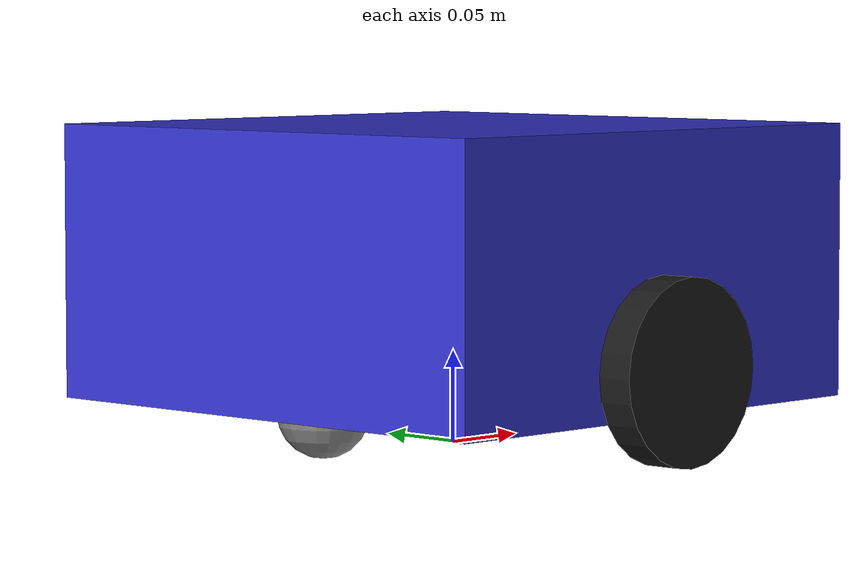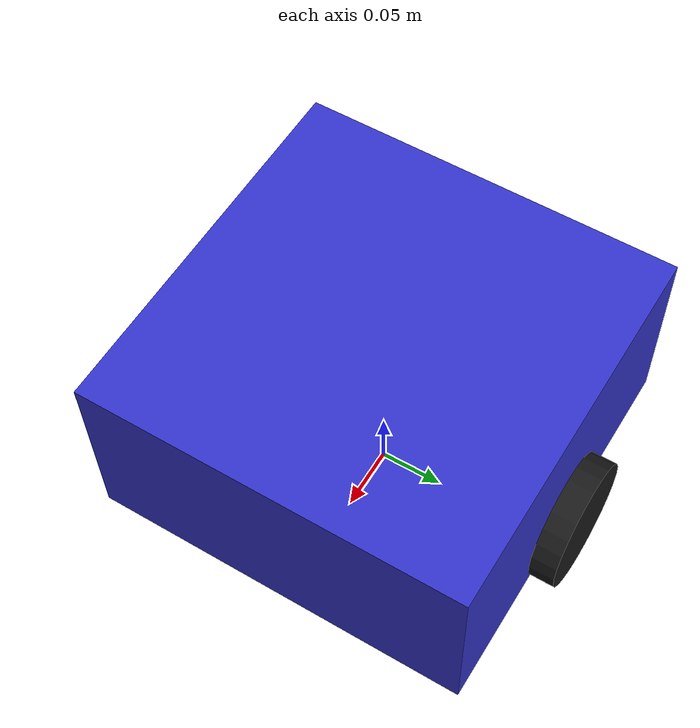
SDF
<?xml version="1.0"?>
<sdf version="1.9">
  <model name="sim_robot">
    <self_collide>false</self_collide>

    <!-- Chassis -->
    <link name="base_link">
      <pose>0 0 0.1 0 0 0</pose>
      <inertial>
        <mass>5.0</mass>
        <inertia>
          <ixx>0.028</ixx>
          <ixy>0</ixy>
          <ixz>0</ixz>
          <iyy>0.028</iyy>
          <iyz>0</iyz>
          <izz>0.045</izz>
        </inertia>
      </inertial>
      <collision name="chassis_collision">
        <geometry>
          <box><size>0.3 0.3 0.15</size></box>
        </geometry>
      </collision>
      <visual name="chassis_visual">
        <geometry>
          <box><size>0.3 0.3 0.15</size></box>
        </geometry>
        <material>
          <ambient>0.2 0.2 0.8 1</ambient>
          <diffuse>0.2 0.2 0.8 1</diffuse>
        </material>
      </visual>

      <!-- 2D LiDAR sensor (RPLIDAR S2L equivalent) -->
      <sensor name="lidar" type="gpu_lidar">
        <topic>/scan</topic>
        <update_rate>10</update_rate>
        <lidar>
          <scan>
            <horizontal>
              <samples>3600</samples>
              <resolution>1</resolution>
              <min_angle>0</min_angle>
              <max_angle>6.28318</max_angle>
            </horizontal>
          </scan>
          <range>
            <min>0.15</min>
            <max>16.0</max>
          </range>
        </lidar>
        <visualize>true</visualize>
      </sensor>
    </link>

    <!-- Left wheel -->
    <link name="left_wheel">
      <pose>0 0.16 0.05 -1.5707 0 0</pose>
      <inertial>
        <mass>0.5</mass>
        <inertia>
          <ixx>0.00028</ixx>
          <ixy>0</ixy>
          <ixz>0</ixz>
          <iyy>0.00028</iyy>
          <iyz>0</iyz>
          <izz>0.00028</izz>
        </inertia>
      </inertial>
      <collision name="left_wheel_collision">
        <geometry>
          <cylinder><radius>0.05</radius><length>0.02</length></cylinder>
        </geometry>
        <surface>
          <friction>
            <mu>1.0</mu>
            <mu2>1.0</mu2>
          </friction>
        </surface>
      </collision>
      <visual name="left_wheel_visual">
        <geometry>
          <cylinder><radius>0.05</radius><length>0.02</length></cylinder>
        </geometry>
        <material>
          <ambient>0.1 0.1 0.1 1</ambient>
          <diffuse>0.1 0.1 0.1 1</diffuse>
        </material>
      </visual>
    </link>

    <!-- Right wheel -->
    <link name="right_wheel">
      <pose>0 -0.16 0.05 -1.5707 0 0</pose>
      <inertial>
        <mass>0.5</mass>
        <inertia>
          <ixx>0.00028</ixx>
          <ixy>0</ixy>
          <ixz>0</ixz>
          <iyy>0.00028</iyy>
          <iyz>0</iyz>
          <izz>0.00028</izz>
        </inertia>
      </inertial>
      <collision name="right_wheel_collision">
        <geometry>
          <cylinder><radius>0.05</radius><length>0.02</length></cylinder>
        </geometry>
        <surface>
          <friction>
            <mu>1.0</mu>
            <mu2>1.0</mu2>
          </friction>
        </surface>
      </collision>
      <visual name="right_wheel_visual">
        <geometry>
          <cylinder><radius>0.05</radius><length>0.02</length></cylinder>
        </geometry>
        <material>
          <ambient>0.1 0.1 0.1 1</ambient>
          <diffuse>0.1 0.1 0.1 1</diffuse>
        </material>
      </visual>
    </link>

    <!-- Caster wheel (rear) -->
    <link name="caster">
      <pose>-0.1 0 0.025 0 0 0</pose>
      <inertial>
        <mass>0.2</mass>
        <inertia>
          <ixx>0.00003</ixx>
          <ixy>0</ixy>
          <ixz>0</ixz>
          <iyy>0.00003</iyy>
          <iyz>0</iyz>
          <izz>0.00003</izz>
        </inertia>
      </inertial>
      <collision name="caster_collision">
        <geometry>
          <sphere><radius>0.025</radius></sphere>
        </geometry>
        <surface>
          <friction>
            <mu>0.01</mu>
            <mu2>0.01</mu2>
          </friction>
        </surface>
      </collision>
      <visual name="caster_visual">
        <geometry>
          <sphere><radius>0.025</radius></sphere>
        </geometry>
        <material>
          <ambient>0.5 0.5 0.5 1</ambient>
          <diffuse>0.5 0.5 0.5 1</diffuse>
        </material>
      </visual>
    </link>

    <!-- Wheel joints -->
    <joint name="left_wheel_joint" type="revolute">
      <parent>base_link</parent>
      <child>left_wheel</child>
      <axis>
        <xyz>0 0 1</xyz>
      </axis>
    </joint>

    <joint name="right_wheel_joint" type="revolute">
      <parent>base_link</parent>
      <child>right_wheel</child>
      <axis>
        <xyz>0 0 1</xyz>
      </axis>
    </joint>

    <joint name="caster_joint" type="ball">
      <parent>base_link</parent>
      <child>caster</child>
    </joint>

    <!-- DiffDrive plugin -->
    <plugin filename="gz-sim-diff-drive-system"
            name="gz::sim::systems::DiffDrive">
      <left_joint>left_wheel_joint</left_joint>
      <right_joint>right_wheel_joint</right_joint>
      <wheel_separation>0.3</wheel_separation>
      <wheel_radius>0.05</wheel_radius>
      <max_linear_acceleration>1.0</max_linear_acceleration>
      <max_angular_acceleration>2.0</max_angular_acceleration>
      <velocity_command_timeout>0.8</velocity_command_timeout>
      <odom_publish_frequency>10</odom_publish_frequency>
      <topic>/cmd_vel</topic>
      <odom_topic>/odom</odom_topic>
      <tf_topic>/tf</tf_topic>
      <frame_id>odom</frame_id>
      <child_frame_id>base_link</child_frame_id>
    </plugin>

  </model>
</sdf>
